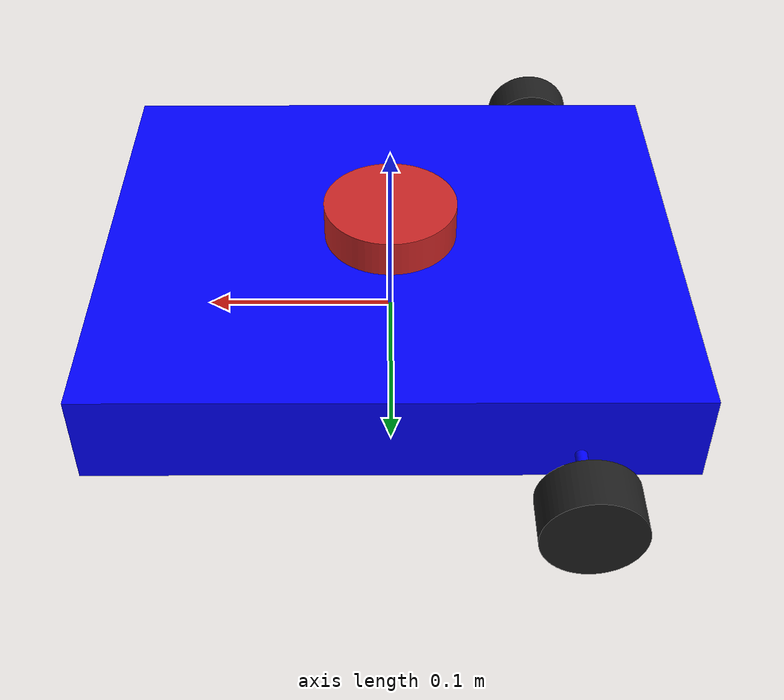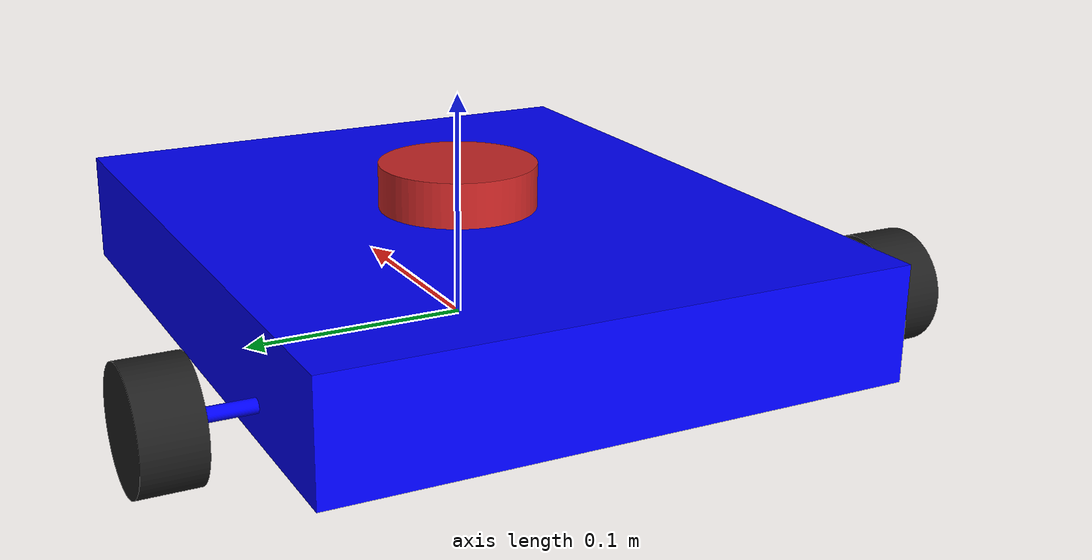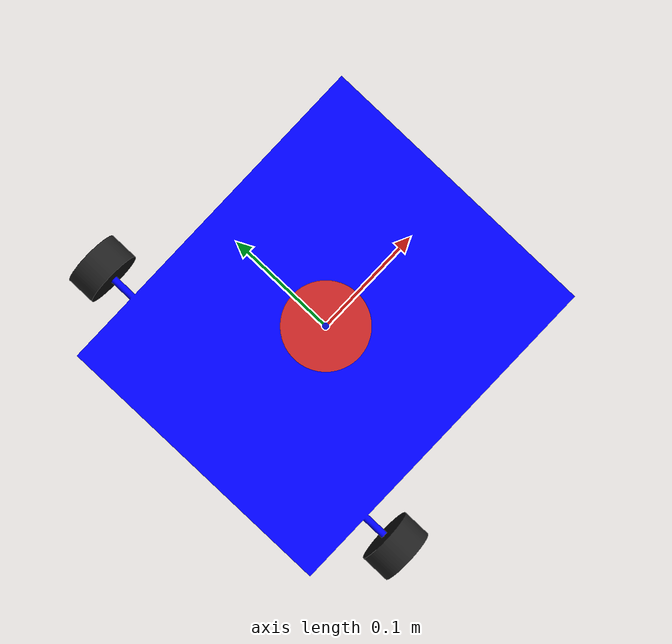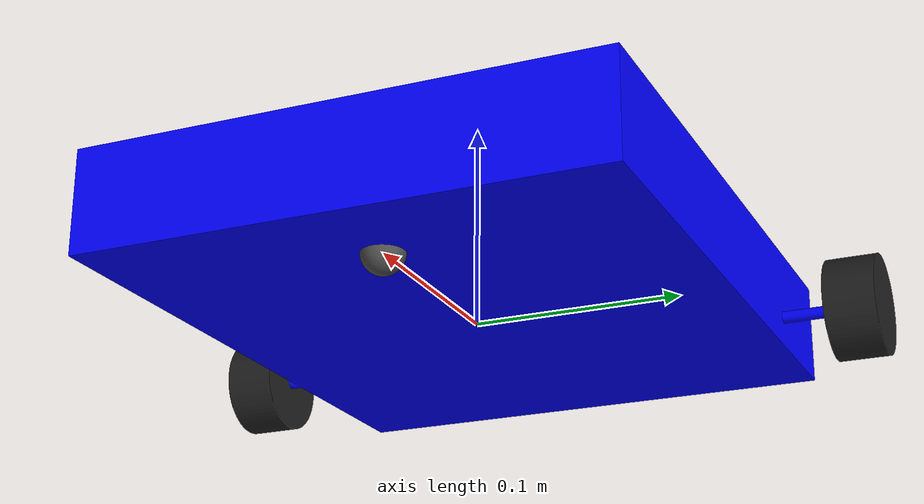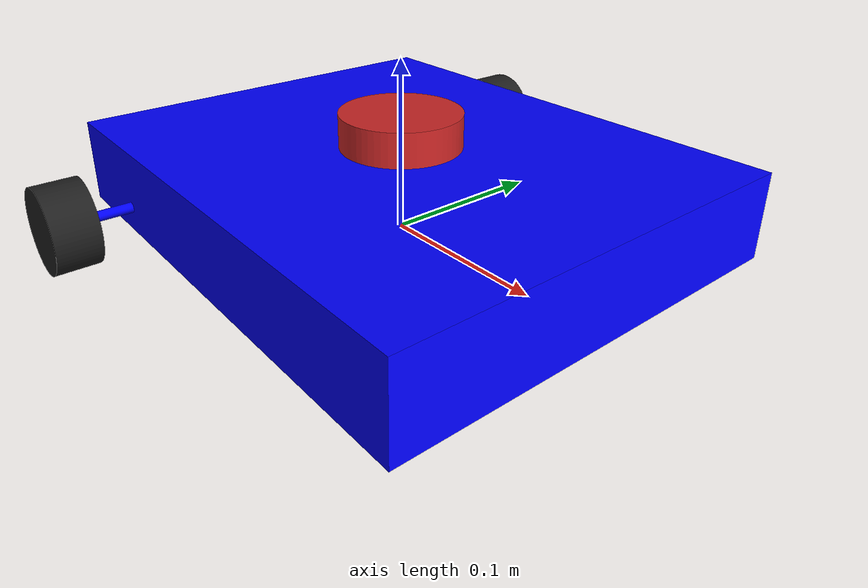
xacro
<?xml version="1.0"?>
<robot name="ultron" xmlns:xacro="http://www.ros.org/wiki/xacro">
    <xacro:include filename="links.urdf.xacro" />
    <xacro:include filename="joints.urdf.xacro" />
    <xacro:include filename="gazebo_control.xacro" />
    <xacro:include filename="lidar_sensor.xacro" />
</robot>

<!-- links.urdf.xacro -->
<robot name="ultron" xmlns:xacro="http://www.ros.org/wiki/xacro">
    <xacro:include filename="inertia_macros.xacro" />

    <link name="base_link"></link>
    <link name="chassis_link">
        <visual>
            <material name="Blue">
                <color rgba="0.0 0.0 1.0 1.0" />
            </material>
            <origin xyz="0.0 0.0 0.0" rpy="0.0 0.0 0.0" />
            <geometry>
                <mesh filename="file:///home/wizard/practice_ws/src/robot_urdf/mesh/chassis.stl" />
            </geometry>
        </visual>
        <collision>
            <origin xyz="0.0 0.0 0.0" rpy="0.0 0.0 0.0" />
            <geometry>
                <mesh filename="file:///home/wizard/practice_ws/src/robot_urdf/mesh/chassis.stl" />
            </geometry>
        </collision>

        <xacro:inertial_cuboid mass="0.2" x="0.3" y="0.25" z="0.05">
            <origin xyz="0.0 0.0 0.025" rpy="0.0 0.0 0.0" />
        </xacro:inertial_cuboid>
    </link>
    <gazebo reference="chassis_link">
        <material>Gazebo/Blue</material>
    </gazebo>

    <link name="left_wheel_link">
        <visual>
            <origin xyz="0.0 0.0 0.0" rpy="0.0 0.0 0.0" />
            <geometry>
                <mesh filename="file:///home/wizard/practice_ws/src/robot_urdf/mesh/wheel.stl" />
            </geometry>
        </visual>
        <collision>
            <origin xyz="0.0 0.0 0.0" rpy="0.0 0.0 0.0" />
            <geometry>
                <mesh filename="file:///home/wizard/practice_ws/src/robot_urdf/mesh/wheel.stl" />
            </geometry>
        </collision>
        <xacro:inertial_cylinder mass="0.04" length="0.025" radius="0.025">
            <origin xyz="0.0 0.0 0.0" rpy="0.0 0.0 0.0" />
        </xacro:inertial_cylinder>
    </link>
    <gazebo reference="left_wheel_link">
        <material>Gazebo/FlatBlack</material>
    </gazebo>

    <link name="right_wheel_link">
        <visual>
            <origin xyz="0.0 0.0 0.0" rpy="0.0 0.0 0.0" />
            <geometry>
                <mesh filename="file:///home/wizard/practice_ws/src/robot_urdf/mesh/wheel.stl" />
            </geometry>
        </visual>
        <collision>
            <origin xyz="0.0 0.0 0.0" rpy="0.0 0.0 0.0" />
            <geometry>
                <mesh filename="file:///home/wizard/practice_ws/src/robot_urdf/mesh/wheel.stl" />
            </geometry>
        </collision>
        <xacro:inertial_cylinder mass="0.04" length="0.025" radius="0.025">
            <origin xyz="0.0 0.0 0.0" rpy="0.0 0.0 0.0" />
        </xacro:inertial_cylinder>
    </link>
    <gazebo reference="right_wheel_link">
        <material>Gazebo/FlatBlack</material>
    </gazebo>

    <link name="caster_link">
        <visual>
            <origin xyz="0.0 0.0 0.0" rpy="0.0 0.0 0.0" />
            <geometry>
                <mesh filename="file:///home/wizard/practice_ws/src/robot_urdf/mesh/caster.stl" />
            </geometry>
        </visual>
        <collision>
            <origin xyz="0.0 0.0 0.0" rpy="0.0 0.0 0.0" />
            <geometry>
                <mesh filename="file:///home/wizard/practice_ws/src/robot_urdf/mesh/caster.stl" />
            </geometry>
        </collision>
    </link>
    <gazebo reference="caster_link">
        <material>Gazebo/DarkGrey</material>
        <mu1 value="0.001"/>
        <mu2 value="0.001"/>
    </gazebo>

    <link name="lidar_link">
        <visual>
            <origin xyz="0.0 0.0 -0.01" rpy="0.0 0.0 0.0"/>
            <geometry>
                <mesh filename="file:///home/wizard/practice_ws/src/robot_urdf/mesh/lidar.stl" />
            </geometry>
        </visual>
        <collision>
            <origin xyz="0.0 0.0 -0.01" rpy="0.0 0.0 0.0"/>
            <geometry>
                <mesh filename="file:///home/wizard/practice_ws/src/robot_urdf/mesh/lidar.stl" />
            </geometry>
        </collision>
    </link>
    <gazebo reference="lidar_link">
        <material>Gazebo/Red</material>
    </gazebo>

</robot>

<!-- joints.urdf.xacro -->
<robot name="ultron" xmlns:xacro="http://www.ros.org/wiki/xacro">

    <joint name="chassis_joint" type="fixed">
        <parent link="base_link" />
        <child link="chassis_link" />
        <origin xyz="0.0 0.0 0.0" rpy="0.0 0.0 0.0" />
    </joint>

    <joint name="left_wheel_joint" type="continuous">
        <origin xyz="-0.09 0.1625 0.015" rpy="0.0 0.0 0.0" />
        <parent link="chassis_link" />
        <child link="left_wheel_link" />
        <axis xyz="0.0 1.0 0.0"/>
    </joint>

    <joint name="right_wheel_joint" type="continuous">
        <origin xyz="-0.09 -0.1625 0.015" rpy="0.0 0.0 0.0" />
        <parent link="chassis_link" />
        <child link="right_wheel_link" />
        <axis xyz="0.0 1.0 0.0"/>
    </joint>

    <joint name="caster_joint" type="fixed">
        <origin xyz="0.10 0.0 0.0" rpy="0.0 0.0 0.0" />
        <parent link="chassis_link" />
        <child link="caster_link" />
    </joint>

    <joint name="lidar_joint" type="fixed">
        <origin xyz="0.0 0.0 0.06" rpy="0.0 0.0 0.0"/>
        <parent link="chassis_link"/>
        <child link="lidar_link"/>
    </joint>

</robot>
